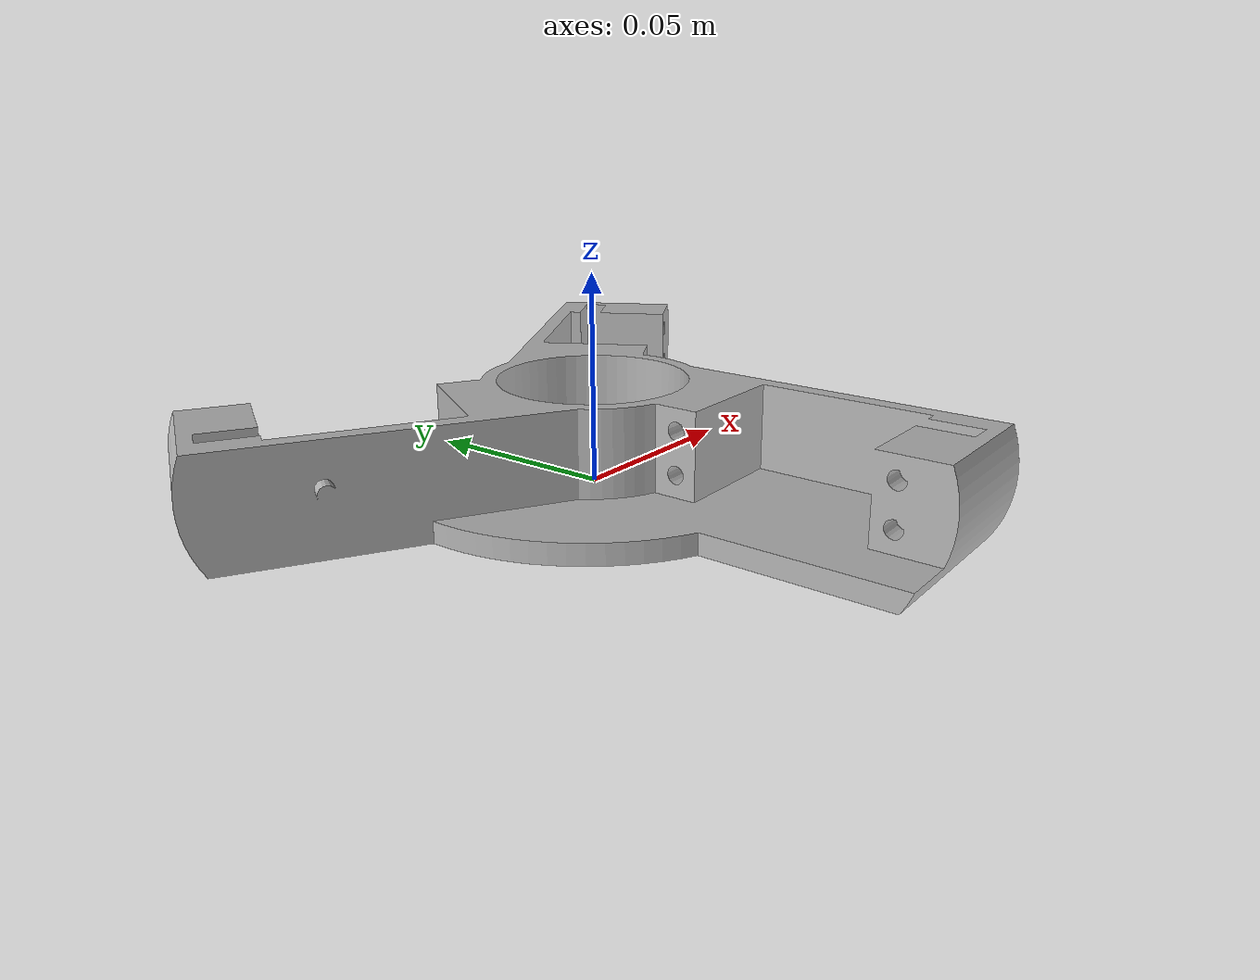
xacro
<?xml version="1.0" ?>
<robot name="Make_urdf" xmlns:xacro="http://www.ros.org/wiki/xacro">

<xacro:include filename="$(find Make_urdf_description)/urdf/materials.xacro" />
<xacro:include filename="$(find Make_urdf_description)/urdf/Make_urdf.trans" />
<xacro:include filename="$(find Make_urdf_description)/urdf/Make_urdf.gazebo" />
<link name="base_link">
  <inertial>
    <origin xyz="-1.6805218320533378e-17 3.3610436641066757e-17 0.009205687767449344" rpy="0 0 0"/>
    <mass value="1.062100663130642"/>
    <inertia ixx="0.001837" iyy="0.001837" izz="0.003549" ixy="-0.0" iyz="0.0" ixz="0.0"/>
  </inertial>
  <visual>
    <origin xyz="0 0 0" rpy="0 0 0"/>
    <geometry>
      <mesh filename="package://Make_urdf_description/meshes/base_link.stl" scale="0.001 0.001 0.001"/>
    </geometry>
    <material name="silver"/>
  </visual>
  <collision>
    <origin xyz="0 0 0" rpy="0 0 0"/>
    <geometry>
      <mesh filename="package://Make_urdf_description/meshes/base_link.stl" scale="0.001 0.001 0.001"/>
    </geometry>
  </collision>
</link>

</robot>

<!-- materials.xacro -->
<robot name="Make_urdf" xmlns:xacro="http://www.ros.org/wiki/xacro" >

<material name="silver">
  <color rgba="0.700 0.700 0.700 1.000"/>
</material>

</robot>

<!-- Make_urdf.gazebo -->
<robot name="Make_urdf" xmlns:xacro="http://www.ros.org/wiki/xacro" >

<xacro:property name="body_color" value="Gazebo/Silver" />

<gazebo>
  <plugin name="control" filename="libgazebo_ros_control.so"/>
</gazebo>
<gazebo reference="base_link">
  <material>${body_color}</material>
  <mu1>0.2</mu1>
  <mu2>0.2</mu2>
  <selfCollide>true</selfCollide>
  <gravity>true</gravity>
</gazebo>

</robot>
